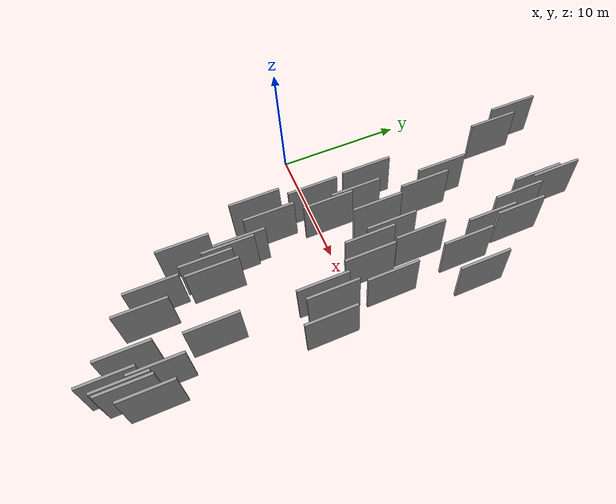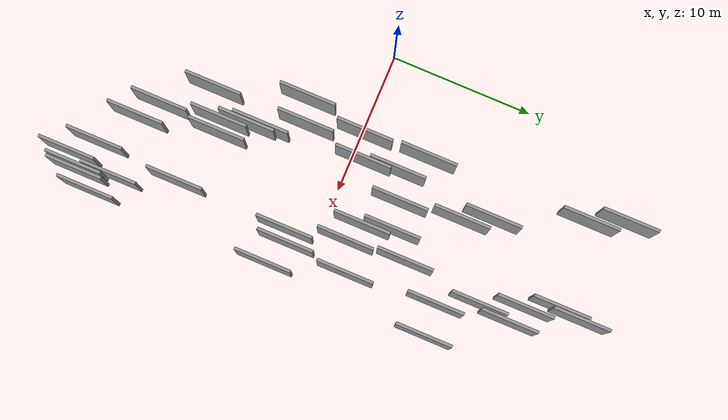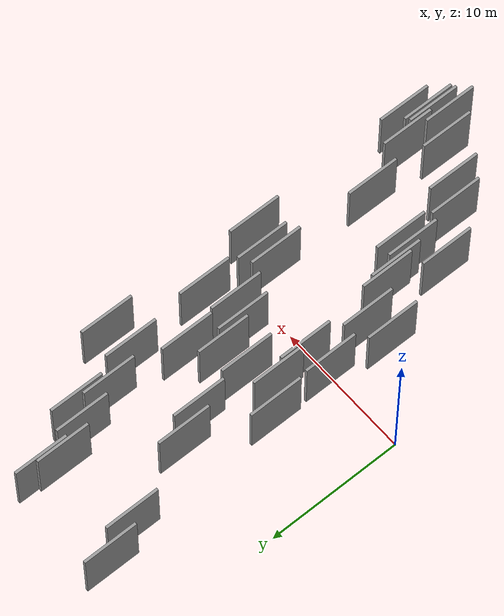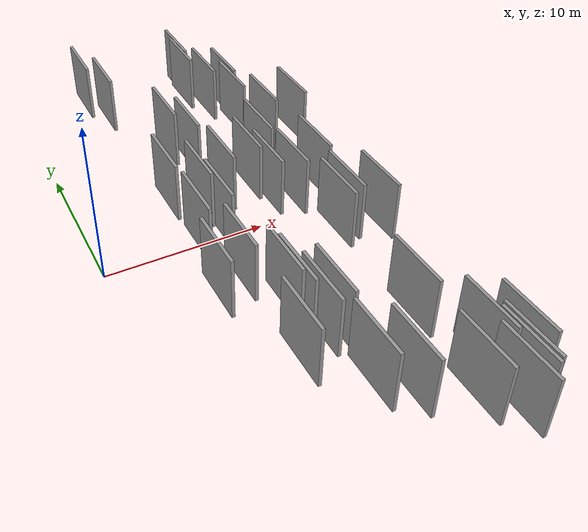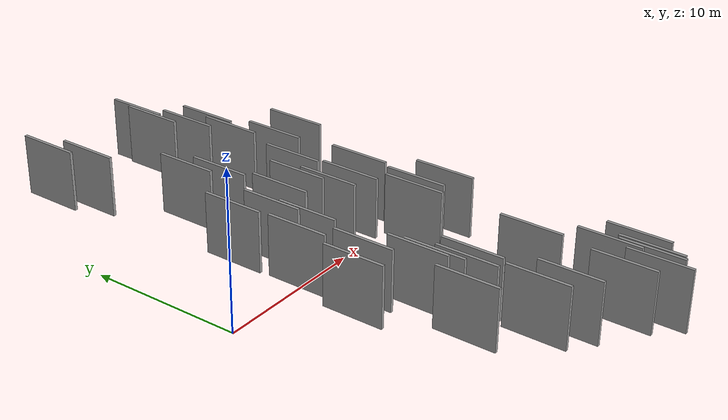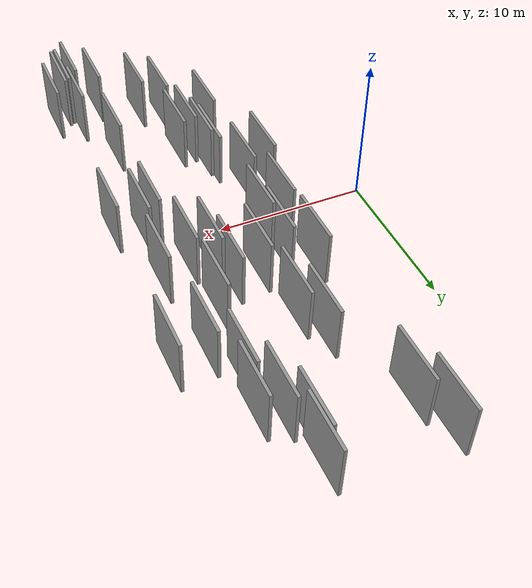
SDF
<sdf version="1.6">
 <world name="default">
  <scene>
   <sky><clouds><speed>12</speed></clouds></sky>
   <ambient>0.4 0.4 0.4 1</ambient>
   <background>0.7 0.7 0.7 1</background>
   <shadows>1</shadows>
  </scene>
  <gravity>0 0 -9.8066</gravity>
  <magnetic_field>6e-06 2.3e-05 -4.2e-05</magnetic_field>
  <physics default="0" name="default_physics" type="ode">
   <ode>
    <solver>
     <type>quick</type>
     <iters>10</iters>
     <sor>1.0</sor>
     <use_dynamic_moi_rescaling>0</use_dynamic_moi_rescaling>
    </solver>
    <constraints>
     <cfm>0</cfm>
     <erp>0.2</erp>
     <contact_max_correcting_vel>100</contact_max_correcting_vel>
     <contact_surface_layer>0.001</contact_surface_layer>
    </constraints>
   </ode>
   <max_step_size>0.004</max_step_size>
   <real_time_factor>1</real_time_factor>
   <real_time_update_rate>250</real_time_update_rate>
  </physics>
  <light name="sun" type="directional">
   <pose>0 0 10 0 0 0</pose>
   <diffuse>0.8 0.8 0.8 1</diffuse>
   <specular>0.2 0.2 0.2 1</specular>
   <attenuation>
    <range>1000</range>
    <constant>0.9</constant>
    <linear>0.01</linear>
    <quadratic>0.001</quadratic>
   </attenuation>
   <direction>-0.5 0.1 -0.9</direction>
  </light>
  <model name="grey_wall_1">
   <static>1</static>
   <pose>16.6936 -15.3172 0.0 0.000000 0.000000 1.570796</pose>
   <link name="link">
    <pose>0 0 2.00 0 0 0</pose>
    <collision name="collision"><geometry><box><size>4.00 0.2 4.00</size></box></geometry></collision>
    <visual name="visual">
     <cast_shadows>0</cast_shadows>
     <geometry><box><size>4.00 0.2 4.00</size></box></geometry>
     <material>
      <script>
       <uri>model://grey_wall/materials/scripts</uri>
       <uri>model://grey_wall/materials/textures</uri>
       <name>vrc/grey_wall</name>
      </script>
     </material>
    </visual>
   </link>
  </model>
  <model name="grey_wall_2">
   <static>1</static>
   <pose>15.1705 2.7142 0.0 0.000000 0.000000 1.570796</pose>
   <link name="link">
    <pose>0 0 2.00 0 0 0</pose>
    <collision name="collision"><geometry><box><size>4.00 0.2 4.00</size></box></geometry></collision>
    <visual name="visual">
     <cast_shadows>0</cast_shadows>
     <geometry><box><size>4.00 0.2 4.00</size></box></geometry>
     <material>
      <script>
       <uri>model://grey_wall/materials/scripts</uri>
       <uri>model://grey_wall/materials/textures</uri>
       <name>vrc/grey_wall</name>
      </script>
     </material>
    </visual>
   </link>
  </model>
  <model name="grey_wall_3">
   <static>1</static>
   <pose>4.6821 18.8132 0.0 0.000000 0.000000 1.570796</pose>
   <link name="link">
    <pose>0 0 2.00 0 0 0</pose>
    <collision name="collision"><geometry><box><size>4.00 0.2 4.00</size></box></geometry></collision>
    <visual name="visual">
     <cast_shadows>0</cast_shadows>
     <geometry><box><size>4.00 0.2 4.00</size></box></geometry>
     <material>
      <script>
       <uri>model://grey_wall/materials/scripts</uri>
       <uri>model://grey_wall/materials/textures</uri>
       <name>vrc/grey_wall</name>
      </script>
     </material>
    </visual>
   </link>
  </model>
  <model name="grey_wall_4">
   <static>1</static>
   <pose>14.7595 -17.5073 0.0 0.000000 0.000000 1.570796</pose>
   <link name="link">
    <pose>0 0 2.00 0 0 0</pose>
    <collision name="collision"><geometry><box><size>4.00 0.2 4.00</size></box></geometry></collision>
    <visual name="visual">
     <cast_shadows>0</cast_shadows>
     <geometry><box><size>4.00 0.2 4.00</size></box></geometry>
     <material>
      <script>
       <uri>model://grey_wall/materials/scripts</uri>
       <uri>model://grey_wall/materials/textures</uri>
       <name>vrc/grey_wall</name>
      </script>
     </material>
    </visual>
   </link>
  </model>
  <model name="grey_wall_5">
   <static>1</static>
   <pose>6.8930 -3.6148 0.0 0.000000 0.000000 1.570796</pose>
   <link name="link">
    <pose>0 0 2.00 0 0 0</pose>
    <collision name="collision"><geometry><box><size>4.00 0.2 4.00</size></box></geometry></collision>
    <visual name="visual">
     <cast_shadows>0</cast_shadows>
     <geometry><box><size>4.00 0.2 4.00</size></box></geometry>
     <material>
      <script>
       <uri>model://grey_wall/materials/scripts</uri>
       <uri>model://grey_wall/materials/textures</uri>
       <name>vrc/grey_wall</name>
      </script>
     </material>
    </visual>
   </link>
  </model>
  <model name="grey_wall_6">
   <static>1</static>
   <pose>11.7753 16.7641 0.0 0.000000 0.000000 1.570796</pose>
   <link name="link">
    <pose>0 0 2.00 0 0 0</pose>
    <collision name="collision"><geometry><box><size>4.00 0.2 4.00</size></box></geometry></collision>
    <visual name="visual">
     <cast_shadows>0</cast_shadows>
     <geometry><box><size>4.00 0.2 4.00</size></box></geometry>
     <material>
      <script>
       <uri>model://grey_wall/materials/scripts</uri>
       <uri>model://grey_wall/materials/textures</uri>
       <name>vrc/grey_wall</name>
      </script>
     </material>
    </visual>
   </link>
  </model>
  <model name="grey_wall_7">
   <static>1</static>
   <pose>8.8121 8.4600 0.0 0.000000 0.000000 1.570796</pose>
   <link name="link">
    <pose>0 0 2.00 0 0 0</pose>
    <collision name="collision"><geometry><box><size>4.00 0.2 4.00</size></box></geometry></collision>
    <visual name="visual">
     <cast_shadows>0</cast_shadows>
     <geometry><box><size>4.00 0.2 4.00</size></box></geometry>
     <material>
      <script>
       <uri>model://grey_wall/materials/scripts</uri>
       <uri>model://grey_wall/materials/textures</uri>
       <name>vrc/grey_wall</name>
      </script>
     </material>
    </visual>
   </link>
  </model>
  <model name="grey_wall_8">
   <static>1</static>
   <pose>16.5922 -2.5811 0.0 0.000000 0.000000 1.570796</pose>
   <link name="link">
    <pose>0 0 2.00 0 0 0</pose>
    <collision name="collision"><geometry><box><size>4.00 0.2 4.00</size></box></geometry></collision>
    <visual name="visual">
     <cast_shadows>0</cast_shadows>
     <geometry><box><size>4.00 0.2 4.00</size></box></geometry>
     <material>
      <script>
       <uri>model://grey_wall/materials/scripts</uri>
       <uri>model://grey_wall/materials/textures</uri>
       <name>vrc/grey_wall</name>
      </script>
     </material>
    </visual>
   </link>
  </model>
  <model name="grey_wall_9">
   <static>1</static>
   <pose>15.2022 -14.2914 0.0 0.000000 0.000000 1.570796</pose>
   <link name="link">
    <pose>0 0 2.00 0 0 0</pose>
    <collision name="collision"><geometry><box><size>4.00 0.2 4.00</size></box></geometry></collision>
    <visual name="visual">
     <cast_shadows>0</cast_shadows>
     <geometry><box><size>4.00 0.2 4.00</size></box></geometry>
     <material>
      <script>
       <uri>model://grey_wall/materials/scripts</uri>
       <uri>model://grey_wall/materials/textures</uri>
       <name>vrc/grey_wall</name>
      </script>
     </material>
    </visual>
   </link>
  </model>
  <model name="grey_wall_10">
   <static>1</static>
   <pose>5.8084 4.8371 0.0 0.000000 0.000000 1.570796</pose>
   <link name="link">
    <pose>0 0 2.00 0 0 0</pose>
    <collision name="collision"><geometry><box><size>4.00 0.2 4.00</size></box></geometry></collision>
    <visual name="visual">
     <cast_shadows>0</cast_shadows>
     <geometry><box><size>4.00 0.2 4.00</size></box></geometry>
     <material>
      <script>
       <uri>model://grey_wall/materials/scripts</uri>
       <uri>model://grey_wall/materials/textures</uri>
       <name>vrc/grey_wall</name>
      </script>
     </material>
    </visual>
   </link>
  </model>
  <model name="grey_wall_11">
   <static>1</static>
   <pose>13.8504 -10.1276 0.0 0.000000 0.000000 1.570796</pose>
   <link name="link">
    <pose>0 0 2.00 0 0 0</pose>
    <collision name="collision"><geometry><box><size>4.00 0.2 4.00</size></box></geometry></collision>
    <visual name="visual">
     <cast_shadows>0</cast_shadows>
     <geometry><box><size>4.00 0.2 4.00</size></box></geometry>
     <material>
      <script>
       <uri>model://grey_wall/materials/scripts</uri>
       <uri>model://grey_wall/materials/textures</uri>
       <name>vrc/grey_wall</name>
      </script>
     </material>
    </visual>
   </link>
  </model>
  <model name="grey_wall_12">
   <static>1</static>
   <pose>8.1723 -6.3561 0.0 0.000000 0.000000 1.570796</pose>
   <link name="link">
    <pose>0 0 2.00 0 0 0</pose>
    <collision name="collision"><geometry><box><size>4.00 0.2 4.00</size></box></geometry></collision>
    <visual name="visual">
     <cast_shadows>0</cast_shadows>
     <geometry><box><size>4.00 0.2 4.00</size></box></geometry>
     <material>
      <script>
       <uri>model://grey_wall/materials/scripts</uri>
       <uri>model://grey_wall/materials/textures</uri>
       <name>vrc/grey_wall</name>
      </script>
     </material>
    </visual>
   </link>
  </model>
  <model name="grey_wall_13">
   <static>1</static>
   <pose>9.3895 -13.1671 0.0 0.000000 0.000000 1.570796</pose>
   <link name="link">
    <pose>0 0 2.00 0 0 0</pose>
    <collision name="collision"><geometry><box><size>4.00 0.2 4.00</size></box></geometry></collision>
    <visual name="visual">
     <cast_shadows>0</cast_shadows>
     <geometry><box><size>4.00 0.2 4.00</size></box></geometry>
     <material>
      <script>
       <uri>model://grey_wall/materials/scripts</uri>
       <uri>model://grey_wall/materials/textures</uri>
       <name>vrc/grey_wall</name>
      </script>
     </material>
    </visual>
   </link>
  </model>
  <model name="grey_wall_14">
   <static>1</static>
   <pose>13.4385 -16.0809 0.0 0.000000 0.000000 1.570796</pose>
   <link name="link">
    <pose>0 0 2.00 0 0 0</pose>
    <collision name="collision"><geometry><box><size>4.00 0.2 4.00</size></box></geometry></collision>
    <visual name="visual">
     <cast_shadows>0</cast_shadows>
     <geometry><box><size>4.00 0.2 4.00</size></box></geometry>
     <material>
      <script>
       <uri>model://grey_wall/materials/scripts</uri>
       <uri>model://grey_wall/materials/textures</uri>
       <name>vrc/grey_wall</name>
      </script>
     </material>
    </visual>
   </link>
  </model>
  <model name="grey_wall_15">
   <static>1</static>
   <pose>15.4638 -16.7162 0.0 0.000000 0.000000 1.570796</pose>
   <link name="link">
    <pose>0 0 2.00 0 0 0</pose>
    <collision name="collision"><geometry><box><size>4.00 0.2 4.00</size></box></geometry></collision>
    <visual name="visual">
     <cast_shadows>0</cast_shadows>
     <geometry><box><size>4.00 0.2 4.00</size></box></geometry>
     <material>
      <script>
       <uri>model://grey_wall/materials/scripts</uri>
       <uri>model://grey_wall/materials/textures</uri>
       <name>vrc/grey_wall</name>
      </script>
     </material>
    </visual>
   </link>
  </model>
  <model name="grey_wall_16">
   <static>1</static>
   <pose>13.9413 13.9471 0.0 0.000000 0.000000 1.570796</pose>
   <link name="link">
    <pose>0 0 2.00 0 0 0</pose>
    <collision name="collision"><geometry><box><size>4.00 0.2 4.00</size></box></geometry></collision>
    <visual name="visual">
     <cast_shadows>0</cast_shadows>
     <geometry><box><size>4.00 0.2 4.00</size></box></geometry>
     <material>
      <script>
       <uri>model://grey_wall/materials/scripts</uri>
       <uri>model://grey_wall/materials/textures</uri>
       <name>vrc/grey_wall</name>
      </script>
     </material>
    </visual>
   </link>
  </model>
  <model name="grey_wall_17">
   <static>1</static>
   <pose>9.3123 4.2130 0.0 0.000000 0.000000 1.570796</pose>
   <link name="link">
    <pose>0 0 2.00 0 0 0</pose>
    <collision name="collision"><geometry><box><size>4.00 0.2 4.00</size></box></geometry></collision>
    <visual name="visual">
     <cast_shadows>0</cast_shadows>
     <geometry><box><size>4.00 0.2 4.00</size></box></geometry>
     <material>
      <script>
       <uri>model://grey_wall/materials/scripts</uri>
       <uri>model://grey_wall/materials/textures</uri>
       <name>vrc/grey_wall</name>
      </script>
     </material>
    </visual>
   </link>
  </model>
  <model name="grey_wall_18">
   <static>1</static>
   <pose>7.9626 10.3638 0.0 0.000000 0.000000 1.570796</pose>
   <link name="link">
    <pose>0 0 2.00 0 0 0</pose>
    <collision name="collision"><geometry><box><size>4.00 0.2 4.00</size></box></geometry></collision>
    <visual name="visual">
     <cast_shadows>0</cast_shadows>
     <geometry><box><size>4.00 0.2 4.00</size></box></geometry>
     <material>
      <script>
       <uri>model://grey_wall/materials/scripts</uri>
       <uri>model://grey_wall/materials/textures</uri>
       <name>vrc/grey_wall</name>
      </script>
     </material>
    </visual>
   </link>
  </model>
  <model name="grey_wall_19">
   <static>1</static>
   <pose>11.2522 4.4628 0.0 0.000000 0.000000 1.570796</pose>
   <link name="link">
    <pose>0 0 2.00 0 0 0</pose>
    <collision name="collision"><geometry><box><size>4.00 0.2 4.00</size></box></geometry></collision>
    <visual name="visual">
     <cast_shadows>0</cast_shadows>
     <geometry><box><size>4.00 0.2 4.00</size></box></geometry>
     <material>
      <script>
       <uri>model://grey_wall/materials/scripts</uri>
       <uri>model://grey_wall/materials/textures</uri>
       <name>vrc/grey_wall</name>
      </script>
     </material>
    </visual>
   </link>
  </model>
  <model name="grey_wall_20">
   <static>1</static>
   <pose>14.8044 -1.7205 0.0 0.000000 0.000000 1.570796</pose>
   <link name="link">
    <pose>0 0 2.00 0 0 0</pose>
    <collision name="collision"><geometry><box><size>4.00 0.2 4.00</size></box></geometry></collision>
    <visual name="visual">
     <cast_shadows>0</cast_shadows>
     <geometry><box><size>4.00 0.2 4.00</size></box></geometry>
     <material>
      <script>
       <uri>model://grey_wall/materials/scripts</uri>
       <uri>model://grey_wall/materials/textures</uri>
       <name>vrc/grey_wall</name>
      </script>
     </material>
    </visual>
   </link>
  </model>
  <model name="grey_wall_21">
   <static>1</static>
   <pose>11.7199 2.4866 0.0 0.000000 0.000000 1.570796</pose>
   <link name="link">
    <pose>0 0 2.00 0 0 0</pose>
    <collision name="collision"><geometry><box><size>4.00 0.2 4.00</size></box></geometry></collision>
    <visual name="visual">
     <cast_shadows>0</cast_shadows>
     <geometry><box><size>4.00 0.2 4.00</size></box></geometry>
     <material>
      <script>
       <uri>model://grey_wall/materials/scripts</uri>
       <uri>model://grey_wall/materials/textures</uri>
       <name>vrc/grey_wall</name>
      </script>
     </material>
    </visual>
   </link>
  </model>
  <model name="grey_wall_22">
   <static>1</static>
   <pose>13.1033 1.8708 0.0 0.000000 0.000000 1.570796</pose>
   <link name="link">
    <pose>0 0 2.00 0 0 0</pose>
    <collision name="collision"><geometry><box><size>4.00 0.2 4.00</size></box></geometry></collision>
    <visual name="visual">
     <cast_shadows>0</cast_shadows>
     <geometry><box><size>4.00 0.2 4.00</size></box></geometry>
     <material>
      <script>
       <uri>model://grey_wall/materials/scripts</uri>
       <uri>model://grey_wall/materials/textures</uri>
       <name>vrc/grey_wall</name>
      </script>
     </material>
    </visual>
   </link>
  </model>
  <model name="grey_wall_23">
   <static>1</static>
   <pose>13.9822 -2.1459 0.0 0.000000 0.000000 1.570796</pose>
   <link name="link">
    <pose>0 0 2.00 0 0 0</pose>
    <collision name="collision"><geometry><box><size>4.00 0.2 4.00</size></box></geometry></collision>
    <visual name="visual">
     <cast_shadows>0</cast_shadows>
     <geometry><box><size>4.00 0.2 4.00</size></box></geometry>
     <material>
      <script>
       <uri>model://grey_wall/materials/scripts</uri>
       <uri>model://grey_wall/materials/textures</uri>
       <name>vrc/grey_wall</name>
      </script>
     </material>
    </visual>
   </link>
  </model>
  <model name="grey_wall_24">
   <static>1</static>
   <pose>15.7667 -16.5365 0.0 0.000000 0.000000 1.570796</pose>
   <link name="link">
    <pose>0 0 2.00 0 0 0</pose>
    <collision name="collision"><geometry><box><size>4.00 0.2 4.00</size></box></geometry></collision>
    <visual name="visual">
     <cast_shadows>0</cast_shadows>
     <geometry><box><size>4.00 0.2 4.00</size></box></geometry>
     <material>
      <script>
       <uri>model://grey_wall/materials/scripts</uri>
       <uri>model://grey_wall/materials/textures</uri>
       <name>vrc/grey_wall</name>
      </script>
     </material>
    </visual>
   </link>
  </model>
  <model name="grey_wall_25">
   <static>1</static>
   <pose>16.9851 9.1032 0.0 0.000000 0.000000 1.570796</pose>
   <link name="link">
    <pose>0 0 2.00 0 0 0</pose>
    <collision name="collision"><geometry><box><size>4.00 0.2 4.00</size></box></geometry></collision>
    <visual name="visual">
     <cast_shadows>0</cast_shadows>
     <geometry><box><size>4.00 0.2 4.00</size></box></geometry>
     <material>
      <script>
       <uri>model://grey_wall/materials/scripts</uri>
       <uri>model://grey_wall/materials/textures</uri>
       <name>vrc/grey_wall</name>
      </script>
     </material>
    </visual>
   </link>
  </model>
  <model name="grey_wall_26">
   <static>1</static>
   <pose>10.8177 -14.2870 0.0 0.000000 0.000000 1.570796</pose>
   <link name="link">
    <pose>0 0 2.00 0 0 0</pose>
    <collision name="collision"><geometry><box><size>4.00 0.2 4.00</size></box></geometry></collision>
    <visual name="visual">
     <cast_shadows>0</cast_shadows>
     <geometry><box><size>4.00 0.2 4.00</size></box></geometry>
     <material>
      <script>
       <uri>model://grey_wall/materials/scripts</uri>
       <uri>model://grey_wall/materials/textures</uri>
       <name>vrc/grey_wall</name>
      </script>
     </material>
    </visual>
   </link>
  </model>
  <model name="grey_wall_27">
   <static>1</static>
   <pose>14.7269 9.0099 0.0 0.000000 0.000000 1.570796</pose>
   <link name="link">
    <pose>0 0 2.00 0 0 0</pose>
    <collision name="collision"><geometry><box><size>4.00 0.2 4.00</size></box></geometry></collision>
    <visual name="visual">
     <cast_shadows>0</cast_shadows>
     <geometry><box><size>4.00 0.2 4.00</size></box></geometry>
     <material>
      <script>
       <uri>model://grey_wall/materials/scripts</uri>
       <uri>model://grey_wall/materials/textures</uri>
       <name>vrc/grey_wall</name>
      </script>
     </material>
    </visual>
   </link>
  </model>
  <model name="grey_wall_28">
   <static>1</static>
   <pose>8.8433 -9.0732 0.0 0.000000 0.000000 1.570796</pose>
   <link name="link">
    <pose>0 0 2.00 0 0 0</pose>
    <collision name="collision"><geometry><box><size>4.00 0.2 4.00</size></box></geometry></collision>
    <visual name="visual">
     <cast_shadows>0</cast_shadows>
     <geometry><box><size>4.00 0.2 4.00</size></box></geometry>
     <material>
      <script>
       <uri>model://grey_wall/materials/scripts</uri>
       <uri>model://grey_wall/materials/textures</uri>
       <name>vrc/grey_wall</name>
      </script>
     </material>
    </visual>
   </link>
  </model>
  <model name="grey_wall_29">
   <static>1</static>
   <pose>7.4059 3.2678 0.0 0.000000 0.000000 1.570796</pose>
   <link name="link">
    <pose>0 0 2.00 0 0 0</pose>
    <collision name="collision"><geometry><box><size>4.00 0.2 4.00</size></box></geometry></collision>
    <visual name="visual">
     <cast_shadows>0</cast_shadows>
     <geometry><box><size>4.00 0.2 4.00</size></box></geometry>
     <material>
      <script>
       <uri>model://grey_wall/materials/scripts</uri>
       <uri>model://grey_wall/materials/textures</uri>
       <name>vrc/grey_wall</name>
      </script>
     </material>
    </visual>
   </link>
  </model>
  <model name="grey_wall_30">
   <static>1</static>
   <pose>12.6510 14.5547 0.0 0.000000 0.000000 1.570796</pose>
   <link name="link">
    <pose>0 0 2.00 0 0 0</pose>
    <collision name="collision"><geometry><box><size>4.00 0.2 4.00</size></box></geometry></collision>
    <visual name="visual">
     <cast_shadows>0</cast_shadows>
     <geometry><box><size>4.00 0.2 4.00</size></box></geometry>
     <material>
      <script>
       <uri>model://grey_wall/materials/scripts</uri>
       <uri>model://grey_wall/materials/textures</uri>
       <name>vrc/grey_wall</name>
      </script>
     </material>
    </visual>
   </link>
  </model>
  <model name="grey_wall_31">
   <static>1</static>
   <pose>5.9520 0.2701 0.0 0.000000 0.000000 1.570796</pose>
   <link name="link">
    <pose>0 0 2.00 0 0 0</pose>
    <collision name="collision"><geometry><box><size>4.00 0.2 4.00</size></box></geometry></collision>
    <visual name="visual">
     <cast_shadows>0</cast_shadows>
     <geometry><box><size>4.00 0.2 4.00</size></box></geometry>
     <material>
      <script>
       <uri>model://grey_wall/materials/scripts</uri>
       <uri>model://grey_wall/materials/textures</uri>
       <name>vrc/grey_wall</name>
      </script>
     </material>
    </visual>
   </link>
  </model>
  <model name="grey_wall_32">
   <static>1</static>
   <pose>13.6053 11.6765 0.0 0.000000 0.000000 1.570796</pose>
   <link name="link">
    <pose>0 0 2.00 0 0 0</pose>
    <collision name="collision"><geometry><box><size>4.00 0.2 4.00</size></box></geometry></collision>
    <visual name="visual">
     <cast_shadows>0</cast_shadows>
     <geometry><box><size>4.00 0.2 4.00</size></box></geometry>
     <material>
      <script>
       <uri>model://grey_wall/materials/scripts</uri>
       <uri>model://grey_wall/materials/textures</uri>
       <name>vrc/grey_wall</name>
      </script>
     </material>
    </visual>
   </link>
  </model>
  <model name="grey_wall_33">
   <static>1</static>
   <pose>8.4023 -7.2778 0.0 0.000000 0.000000 1.570796</pose>
   <link name="link">
    <pose>0 0 2.00 0 0 0</pose>
    <collision name="collision"><geometry><box><size>4.00 0.2 4.00</size></box></geometry></collision>
    <visual name="visual">
     <cast_shadows>0</cast_shadows>
     <geometry><box><size>4.00 0.2 4.00</size></box></geometry>
     <material>
      <script>
       <uri>model://grey_wall/materials/scripts</uri>
       <uri>model://grey_wall/materials/textures</uri>
       <name>vrc/grey_wall</name>
      </script>
     </material>
    </visual>
   </link>
  </model>
  <model name="grey_wall_34">
   <static>1</static>
   <pose>9.7330 -8.8598 0.0 0.000000 0.000000 1.570796</pose>
   <link name="link">
    <pose>0 0 2.00 0 0 0</pose>
    <collision name="collision"><geometry><box><size>4.00 0.2 4.00</size></box></geometry></collision>
    <visual name="visual">
     <cast_shadows>0</cast_shadows>
     <geometry><box><size>4.00 0.2 4.00</size></box></geometry>
     <material>
      <script>
       <uri>model://grey_wall/materials/scripts</uri>
       <uri>model://grey_wall/materials/textures</uri>
       <name>vrc/grey_wall</name>
      </script>
     </material>
    </visual>
   </link>
  </model>
  <model name="grey_wall_35">
   <static>1</static>
   <pose>5.2125 -4.1837 0.0 0.000000 0.000000 1.570796</pose>
   <link name="link">
    <pose>0 0 2.00 0 0 0</pose>
    <collision name="collision"><geometry><box><size>4.00 0.2 4.00</size></box></geometry></collision>
    <visual name="visual">
     <cast_shadows>0</cast_shadows>
     <geometry><box><size>4.00 0.2 4.00</size></box></geometry>
     <material>
      <script>
       <uri>model://grey_wall/materials/scripts</uri>
       <uri>model://grey_wall/materials/textures</uri>
       <name>vrc/grey_wall</name>
      </script>
     </material>
    </visual>
   </link>
  </model>
  <model name="grey_wall_36">
   <static>1</static>
   <pose>6.9964 -10.2780 0.0 0.000000 0.000000 1.570796</pose>
   <link name="link">
    <pose>0 0 2.00 0 0 0</pose>
    <collision name="collision"><geometry><box><size>4.00 0.2 4.00</size></box></geometry></collision>
    <visual name="visual">
     <cast_shadows>0</cast_shadows>
     <geometry><box><size>4.00 0.2 4.00</size></box></geometry>
     <material>
      <script>
       <uri>model://grey_wall/materials/scripts</uri>
       <uri>model://grey_wall/materials/textures</uri>
       <name>vrc/grey_wall</name>
      </script>
     </material>
    </visual>
   </link>
  </model>
  <model name="grey_wall_37">
   <static>1</static>
   <pose>11.9953 18.2769 0.0 0.000000 0.000000 1.570796</pose>
   <link name="link">
    <pose>0 0 2.00 0 0 0</pose>
    <collision name="collision"><geometry><box><size>4.00 0.2 4.00</size></box></geometry></collision>
    <visual name="visual">
     <cast_shadows>0</cast_shadows>
     <geometry><box><size>4.00 0.2 4.00</size></box></geometry>
     <material>
      <script>
       <uri>model://grey_wall/materials/scripts</uri>
       <uri>model://grey_wall/materials/textures</uri>
       <name>vrc/grey_wall</name>
      </script>
     </material>
    </visual>
   </link>
  </model>
  <model name="grey_wall_38">
   <static>1</static>
   <pose>5.6087 16.3807 0.0 0.000000 0.000000 1.570796</pose>
   <link name="link">
    <pose>0 0 2.00 0 0 0</pose>
    <collision name="collision"><geometry><box><size>4.00 0.2 4.00</size></box></geometry></collision>
    <visual name="visual">
     <cast_shadows>0</cast_shadows>
     <geometry><box><size>4.00 0.2 4.00</size></box></geometry>
     <material>
      <script>
       <uri>model://grey_wall/materials/scripts</uri>
       <uri>model://grey_wall/materials/textures</uri>
       <name>vrc/grey_wall</name>
      </script>
     </material>
    </visual>
   </link>
  </model>
  <model name="grey_wall_39">
   <static>1</static>
   <pose>12.8593 6.0632 0.0 0.000000 0.000000 1.570796</pose>
   <link name="link">
    <pose>0 0 2.00 0 0 0</pose>
    <collision name="collision"><geometry><box><size>4.00 0.2 4.00</size></box></geometry></collision>
    <visual name="visual">
     <cast_shadows>0</cast_shadows>
     <geometry><box><size>4.00 0.2 4.00</size></box></geometry>
     <material>
      <script>
       <uri>model://grey_wall/materials/scripts</uri>
       <uri>model://grey_wall/materials/textures</uri>
       <name>vrc/grey_wall</name>
      </script>
     </material>
    </visual>
   </link>
  </model>
  <model name="grey_wall_40">
   <static>1</static>
   <pose>7.6466 0.8627 0.0 0.000000 0.000000 1.570796</pose>
   <link name="link">
    <pose>0 0 2.00 0 0 0</pose>
    <collision name="collision"><geometry><box><size>4.00 0.2 4.00</size></box></geometry></collision>
    <visual name="visual">
     <cast_shadows>0</cast_shadows>
     <geometry><box><size>4.00 0.2 4.00</size></box></geometry>
     <material>
      <script>
       <uri>model://grey_wall/materials/scripts</uri>
       <uri>model://grey_wall/materials/textures</uri>
       <name>vrc/grey_wall</name>
      </script>
     </material>
    </visual>
   </link>
  </model>
 </world>
</sdf>
